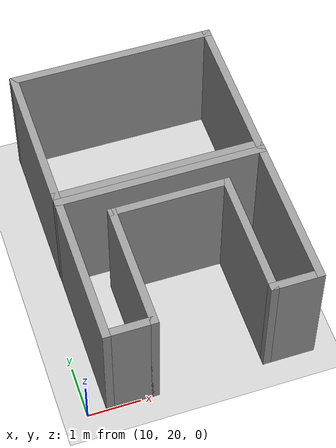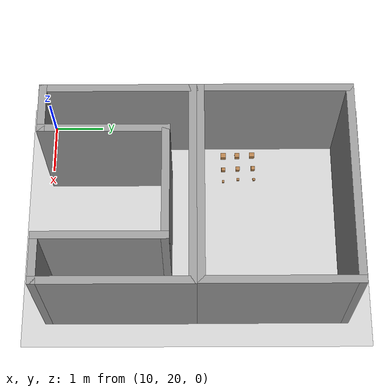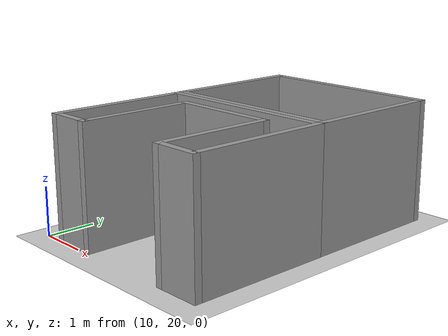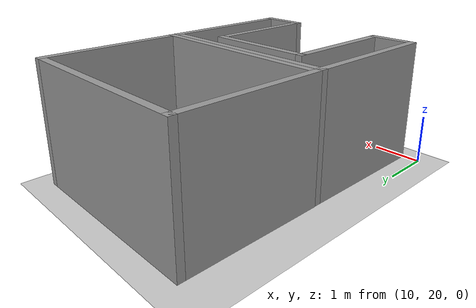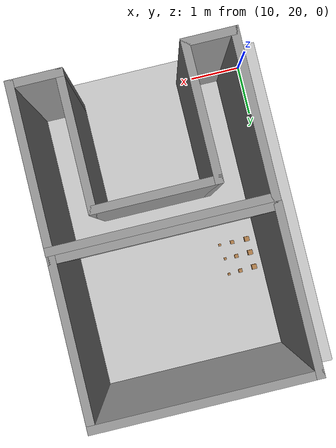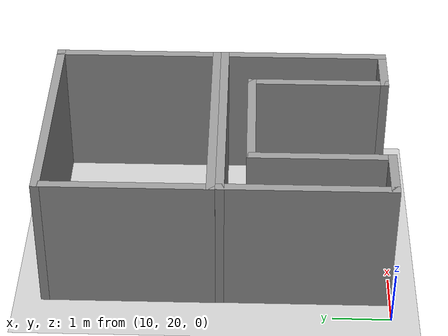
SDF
<sdf version="1.6">
 <world name="default">
  <model name="ground_plane">
   <static>1</static>
   <link name="link">
    <collision name="collision">
     <geometry><plane><normal>0 0 1</normal><size>105 105</size></plane></geometry>
     <surface>
      <contact><collide_bitmask>65535</collide_bitmask></contact>
      <friction><ode><mu>100</mu><mu2>50</mu2></ode></friction>
     </surface>
    </collision>
    <visual name="visual">
     <cast_shadows>0</cast_shadows>
     <geometry><plane><normal>0 0 1</normal><size>105 105</size></plane></geometry>
     <material>
      <script><uri>file://media/materials/scripts/gazebo.material</uri><name>Gazebo/Grey</name></script>
     </material>
    </visual>
   </link>
  </model>
  <model name="base3x4_30">
   <pose>12.3458 24.5057 0 0 -0 0</pose>
   <link name="Wall_18">
    <collision name="Wall_18_Collision">
     <geometry><box><size>3 0.15 2.5</size></box></geometry>
     <pose>0 0 1.25 0 -0 0</pose>
    </collision>
    <visual name="Wall_18_Visual">
     <pose>0 0 1.25 0 -0 0</pose>
     <geometry><box><size>3 0.15 2.5</size></box></geometry>
     <material>
      <script><uri>file://media/materials/scripts/gazebo.material</uri><name>Gazebo/Grey</name></script>
      <ambient>1 1 1 1</ambient>
     </material>
     <meta><layer>0</layer></meta>
    </visual>
    <pose>-1.925 -0 0 0 -0 -1.5708</pose>
   </link>
   <link name="Wall_19">
    <collision name="Wall_19_Collision">
     <geometry><box><size>4 0.15 2.5</size></box></geometry>
     <pose>0 0 1.25 0 -0 0</pose>
    </collision>
    <visual name="Wall_19_Visual">
     <pose>0 0 1.25 0 -0 0</pose>
     <geometry><box><size>4 0.15 2.5</size></box></geometry>
     <material>
      <script><uri>file://media/materials/scripts/gazebo.material</uri><name>Gazebo/Grey</name></script>
      <ambient>1 1 1 1</ambient>
     </material>
     <meta><layer>0</layer></meta>
    </visual>
    <pose>-0 -1.425 0 0 -0 0</pose>
   </link>
   <link name="Wall_20">
    <collision name="Wall_20_Collision">
     <geometry><box><size>3 0.15 2.5</size></box></geometry>
     <pose>0 0 1.25 0 -0 0</pose>
    </collision>
    <visual name="Wall_20_Visual">
     <pose>0 0 1.25 0 -0 0</pose>
     <geometry><box><size>3 0.15 2.5</size></box></geometry>
     <material>
      <script><uri>file://media/materials/scripts/gazebo.material</uri><name>Gazebo/Grey</name></script>
      <ambient>1 1 1 1</ambient>
     </material>
     <meta><layer>0</layer></meta>
    </visual>
    <pose>1.925 -0 0 0 -0 1.5708</pose>
   </link>
   <link name="Wall_21">
    <collision name="Wall_21_Collision">
     <geometry><box><size>4 0.15 2.5</size></box></geometry>
     <pose>0 0 1.25 0 -0 0</pose>
    </collision>
    <visual name="Wall_21_Visual">
     <pose>0 0 1.25 0 -0 0</pose>
     <geometry><box><size>4 0.15 2.5</size></box></geometry>
     <material>
      <script><uri>file://media/materials/scripts/gazebo.material</uri><name>Gazebo/Grey</name></script>
      <ambient>1 1 1 1</ambient>
     </material>
     <meta><layer>0</layer></meta>
    </visual>
    <pose>-0 1.425 0 0 -0 3.14159</pose>
   </link>
   <static>1</static>
  </model>
  <model name="wood_cube_10cm">
   <link name="link">
    <pose>0 0 0.05 0 -0 0</pose>
    <inertial>
     <mass>0.5167</mass>
     <inertia>
      <ixx>0.000861167</ixx>
      <ixy>0</ixy>
      <ixz>0</ixz>
      <iyy>0.000861167</iyy>
      <iyz>0</iyz>
      <izz>0.000861167</izz>
     </inertia>
    </inertial>
    <collision name="collision">
     <geometry><box><size>0.1 0.1 0.1</size></box></geometry>
     <surface>
      <contact>
       <poissons_ratio>0.347</poissons_ratio>
       <elastic_modulus>8.8e+09</elastic_modulus>
       <ode><kp>100000</kp><kd>100</kd><max_vel>100</max_vel><min_depth>0.001</min_depth></ode>
      </contact>
      <friction>
       <torsional>
        <coefficient>1</coefficient>
        <use_patch_radius>0</use_patch_radius>
        <surface_radius>0.01</surface_radius>
       </torsional>
      </friction>
     </surface>
    </collision>
    <visual name="visual">
     <geometry><box><size>0.1 0.1 0.1</size></box></geometry>
     <material>
      <script><uri>file://media/materials/scripts/gazebo.material</uri><name>Gazebo/Wood</name></script>
     </material>
    </visual>
   </link>
   <pose>10.6933 23.5723 -0.001013 0 -0 0</pose>
  </model>
  <model name="wood_cube_10cm_0">
   <link name="link">
    <pose>0 0 0.05 0 -0 0</pose>
    <inertial>
     <mass>0.5167</mass>
     <inertia>
      <ixx>0.000861167</ixx>
      <ixy>0</ixy>
      <ixz>0</ixz>
      <iyy>0.000861167</iyy>
      <iyz>0</iyz>
      <izz>0.000861167</izz>
     </inertia>
    </inertial>
    <collision name="collision">
     <geometry><box><size>0.1 0.1 0.1</size></box></geometry>
     <surface>
      <contact>
       <poissons_ratio>0.347</poissons_ratio>
       <elastic_modulus>8.8e+09</elastic_modulus>
       <ode><kp>100000</kp><kd>100</kd><max_vel>100</max_vel><min_depth>0.001</min_depth></ode>
      </contact>
      <friction>
       <torsional>
        <coefficient>1</coefficient>
        <use_patch_radius>0</use_patch_radius>
        <surface_radius>0.01</surface_radius>
       </torsional>
      </friction>
     </surface>
    </collision>
    <visual name="visual">
     <geometry><box><size>0.1 0.1 0.1</size></box></geometry>
     <material>
      <script><uri>file://media/materials/scripts/gazebo.material</uri><name>Gazebo/Wood</name></script>
     </material>
    </visual>
   </link>
   <pose>10.69 23.8636 -0.001013 0 -0 0</pose>
  </model>
  <model name="wood_cube_10cm_1">
   <link name="link">
    <pose>0 0 0.05 0 -0 0</pose>
    <inertial>
     <mass>0.5167</mass>
     <inertia>
      <ixx>0.000861167</ixx>
      <ixy>0</ixy>
      <ixz>0</ixz>
      <iyy>0.000861167</iyy>
      <iyz>0</iyz>
      <izz>0.000861167</izz>
     </inertia>
    </inertial>
    <collision name="collision">
     <geometry><box><size>0.1 0.1 0.1</size></box></geometry>
     <surface>
      <contact>
       <poissons_ratio>0.347</poissons_ratio>
       <elastic_modulus>8.8e+09</elastic_modulus>
       <ode><kp>100000</kp><kd>100</kd><max_vel>100</max_vel><min_depth>0.001</min_depth></ode>
      </contact>
      <friction>
       <torsional>
        <coefficient>1</coefficient>
        <use_patch_radius>0</use_patch_radius>
        <surface_radius>0.01</surface_radius>
       </torsional>
      </friction>
     </surface>
    </collision>
    <visual name="visual">
     <geometry><box><size>0.1 0.1 0.1</size></box></geometry>
     <material>
      <script><uri>file://media/materials/scripts/gazebo.material</uri><name>Gazebo/Wood</name></script>
     </material>
    </visual>
   </link>
   <pose>10.6798 24.1748 -0.001013 0 -0 0</pose>
  </model>
  <model name="wood_cube_7_5cm">
   <link name="link">
    <pose>0 0 0.0375 0 -0 0</pose>
    <inertial>
     <mass>0.2249</mass>
     <inertia>
      <ixx>0.000210844</ixx>
      <ixy>0</ixy>
      <ixz>0</ixz>
      <iyy>0.000210844</iyy>
      <iyz>0</iyz>
      <izz>0.000210844</izz>
     </inertia>
    </inertial>
    <collision name="collision">
     <geometry><box><size>0.075 0.075 0.075</size></box></geometry>
     <surface>
      <contact>
       <poissons_ratio>0.347</poissons_ratio>
       <elastic_modulus>8.8e+09</elastic_modulus>
       <ode><kp>100000</kp><kd>100</kd><max_vel>100</max_vel><min_depth>0.001</min_depth></ode>
      </contact>
      <friction>
       <torsional>
        <coefficient>1</coefficient>
        <use_patch_radius>0</use_patch_radius>
        <surface_radius>0.01</surface_radius>
       </torsional>
      </friction>
     </surface>
    </collision>
    <visual name="visual">
     <geometry><box><size>0.075 0.075 0.075</size></box></geometry>
     <material>
      <script><uri>file://media/materials/scripts/gazebo.material</uri><name>Gazebo/Wood</name></script>
     </material>
    </visual>
   </link>
   <pose>11.0047 23.569 -0.001006 0 -0 0</pose>
  </model>
  <model name="wood_cube_7_5cm_0">
   <link name="link">
    <pose>0 0 0.0375 0 -0 0</pose>
    <inertial>
     <mass>0.2249</mass>
     <inertia>
      <ixx>0.000210844</ixx>
      <ixy>0</ixy>
      <ixz>0</ixz>
      <iyy>0.000210844</iyy>
      <iyz>0</iyz>
      <izz>0.000210844</izz>
     </inertia>
    </inertial>
    <collision name="collision">
     <geometry><box><size>0.075 0.075 0.075</size></box></geometry>
     <surface>
      <contact>
       <poissons_ratio>0.347</poissons_ratio>
       <elastic_modulus>8.8e+09</elastic_modulus>
       <ode><kp>100000</kp><kd>100</kd><max_vel>100</max_vel><min_depth>0.001</min_depth></ode>
      </contact>
      <friction>
       <torsional>
        <coefficient>1</coefficient>
        <use_patch_radius>0</use_patch_radius>
        <surface_radius>0.01</surface_radius>
       </torsional>
      </friction>
     </surface>
    </collision>
    <visual name="visual">
     <geometry><box><size>0.075 0.075 0.075</size></box></geometry>
     <material>
      <script><uri>file://media/materials/scripts/gazebo.material</uri><name>Gazebo/Wood</name></script>
     </material>
    </visual>
   </link>
   <pose>10.9881 23.8737 -0.001006 0 -0 0</pose>
  </model>
  <model name="wood_cube_7_5cm_1">
   <link name="link">
    <pose>0 0 0.0375 0 -0 0</pose>
    <inertial>
     <mass>0.2249</mass>
     <inertia>
      <ixx>0.000210844</ixx>
      <ixy>0</ixy>
      <ixz>0</ixz>
      <iyy>0.000210844</iyy>
      <iyz>0</iyz>
      <izz>0.000210844</izz>
     </inertia>
    </inertial>
    <collision name="collision">
     <geometry><box><size>0.075 0.075 0.075</size></box></geometry>
     <surface>
      <contact>
       <poissons_ratio>0.347</poissons_ratio>
       <elastic_modulus>8.8e+09</elastic_modulus>
       <ode><kp>100000</kp><kd>100</kd><max_vel>100</max_vel><min_depth>0.001</min_depth></ode>
      </contact>
      <friction>
       <torsional>
        <coefficient>1</coefficient>
        <use_patch_radius>0</use_patch_radius>
        <surface_radius>0.01</surface_radius>
       </torsional>
      </friction>
     </surface>
    </collision>
    <visual name="visual">
     <geometry><box><size>0.075 0.075 0.075</size></box></geometry>
     <material>
      <script><uri>file://media/materials/scripts/gazebo.material</uri><name>Gazebo/Wood</name></script>
     </material>
    </visual>
   </link>
   <pose>10.9777 24.1915 -0.001006 0 -0 0</pose>
  </model>
  <model name="wood_cube_5cm">
   <link name="link">
    <pose>0 0 0.025 0 -0 0</pose>
    <inertial>
     <mass>0.0565</mass>
     <inertia>
      <ixx>2.35417e-05</ixx>
      <ixy>0</ixy>
      <ixz>0</ixz>
      <iyy>2.35417e-05</iyy>
      <iyz>0</iyz>
      <izz>2.35417e-05</izz>
     </inertia>
    </inertial>
    <collision name="collision">
     <geometry><box><size>0.05 0.05 0.05</size></box></geometry>
     <surface>
      <contact>
       <poissons_ratio>0.347</poissons_ratio>
       <elastic_modulus>8.8e+09</elastic_modulus>
       <ode><kp>100000</kp><kd>1</kd><max_vel>1</max_vel><min_depth>0.001</min_depth></ode>
      </contact>
      <friction>
       <torsional>
        <coefficient>1</coefficient>
        <use_patch_radius>0</use_patch_radius>
        <surface_radius>0.05</surface_radius>
       </torsional>
      </friction>
     </surface>
    </collision>
    <visual name="visual">
     <geometry><box><size>0.05 0.05 0.05</size></box></geometry>
     <material>
      <script><uri>file://media/materials/scripts/gazebo.material</uri><name>Gazebo/Wood</name></script>
     </material>
    </visual>
   </link>
   <pose>11.2698 23.5655 -0.001001 0 -0 0</pose>
  </model>
  <model name="wood_cube_5cm_0">
   <link name="link">
    <pose>0 0 0.025 0 -0 0</pose>
    <inertial>
     <mass>0.0565</mass>
     <inertia>
      <ixx>2.35417e-05</ixx>
      <ixy>0</ixy>
      <ixz>0</ixz>
      <iyy>2.35417e-05</iyy>
      <iyz>0</iyz>
      <izz>2.35417e-05</izz>
     </inertia>
    </inertial>
    <collision name="collision">
     <geometry><box><size>0.05 0.05 0.05</size></box></geometry>
     <surface>
      <contact>
       <poissons_ratio>0.347</poissons_ratio>
       <elastic_modulus>8.8e+09</elastic_modulus>
       <ode><kp>100000</kp><kd>1</kd><max_vel>1</max_vel><min_depth>0.001</min_depth></ode>
      </contact>
      <friction>
       <torsional>
        <coefficient>1</coefficient>
        <use_patch_radius>0</use_patch_radius>
        <surface_radius>0.05</surface_radius>
       </torsional>
      </friction>
     </surface>
    </collision>
    <visual name="visual">
     <geometry><box><size>0.05 0.05 0.05</size></box></geometry>
     <material>
      <script><uri>file://media/materials/scripts/gazebo.material</uri><name>Gazebo/Wood</name></script>
     </material>
    </visual>
   </link>
   <pose>11.2265 23.8764 -0.001001 0 -0 0</pose>
  </model>
  <model name="wood_cube_5cm_1">
   <link name="link">
    <pose>0 0 0.025 0 -0 0</pose>
    <inertial>
     <mass>0.0565</mass>
     <inertia>
      <ixx>2.35417e-05</ixx>
      <ixy>0</ixy>
      <ixz>0</ixz>
      <iyy>2.35417e-05</iyy>
      <iyz>0</iyz>
      <izz>2.35417e-05</izz>
     </inertia>
    </inertial>
    <collision name="collision">
     <geometry><box><size>0.05 0.05 0.05</size></box></geometry>
     <surface>
      <contact>
       <poissons_ratio>0.347</poissons_ratio>
       <elastic_modulus>8.8e+09</elastic_modulus>
       <ode><kp>100000</kp><kd>1</kd><max_vel>1</max_vel><min_depth>0.001</min_depth></ode>
      </contact>
      <friction>
       <torsional>
        <coefficient>1</coefficient>
        <use_patch_radius>0</use_patch_radius>
        <surface_radius>0.05</surface_radius>
       </torsional>
      </friction>
     </surface>
    </collision>
    <visual name="visual">
     <geometry><box><size>0.05 0.05 0.05</size></box></geometry>
     <material>
      <script><uri>file://media/materials/scripts/gazebo.material</uri><name>Gazebo/Wood</name></script>
     </material>
    </visual>
   </link>
   <pose>11.2228 24.2076 -0.001001 0 -0 0</pose>
  </model>
  <model name="box_u_v4X3X2.5_7">
   <pose>12.352 21.5082 0 0 -0 0</pose>
   <link name="Wall_30">
    <collision name="Wall_30_Collision">
     <geometry><box><size>3 0.15 2.5</size></box></geometry>
     <pose>0 0 1.25 0 -0 0</pose>
    </collision>
    <visual name="Wall_30_Visual">
     <pose>0 0 1.25 0 -0 0</pose>
     <geometry><box><size>3 0.15 2.5</size></box></geometry>
     <material>
      <script><uri>file://media/materials/scripts/gazebo.material</uri><name>Gazebo/Grey</name></script>
      <ambient>1 1 1 1</ambient>
     </material>
     <meta><layer>0</layer></meta>
    </visual>
    <pose>-1.925 0 0 0 -0 -1.5708</pose>
   </link>
   <link name="Wall_32">
    <collision name="Wall_32_Collision">
     <geometry><box><size>4 0.15 2.5</size></box></geometry>
     <pose>0 0 1.25 0 -0 0</pose>
    </collision>
    <visual name="Wall_32_Visual">
     <pose>0 0 1.25 0 -0 0</pose>
     <geometry><box><size>4 0.15 2.5</size></box></geometry>
     <material>
      <script><uri>file://media/materials/scripts/gazebo.material</uri><name>Gazebo/Grey</name></script>
      <ambient>1 1 1 1</ambient>
     </material>
     <meta><layer>0</layer></meta>
    </visual>
    <pose>0 1.425 0 0 -0 0</pose>
   </link>
   <link name="Wall_33">
    <collision name="Wall_33_Collision">
     <geometry><box><size>3 0.15 2.5</size></box></geometry>
     <pose>0 0 1.25 0 -0 0</pose>
    </collision>
    <visual name="Wall_33_Visual">
     <pose>0 0 1.25 0 -0 0</pose>
     <geometry><box><size>3 0.15 2.5</size></box></geometry>
     <material>
      <script><uri>file://media/materials/scripts/gazebo.material</uri><name>Gazebo/Grey</name></script>
      <ambient>1 1 1 1</ambient>
     </material>
     <meta><layer>0</layer></meta>
    </visual>
    <pose>1.925 0 0 0 -0 -1.5708</pose>
   </link>
   <link name="Wall_34">
    <collision name="Wall_34_Collision">
     <geometry><box><size>1 0.15 2.5</size></box></geometry>
     <pose>0 0 1.25 0 -0 0</pose>
    </collision>
    <visual name="Wall_34_Visual">
     <pose>0 0 1.25 0 -0 0</pose>
     <geometry><box><size>1 0.15 2.5</size></box></geometry>
     <material>
      <script><uri>file://media/materials/scripts/gazebo.material</uri><name>Gazebo/Grey</name></script>
      <ambient>1 1 1 1</ambient>
     </material>
     <meta><layer>0</layer></meta>
    </visual>
    <pose>1.5 -1.425 0 0 -0 3.14159</pose>
   </link>
   <link name="Wall_35">
    <collision name="Wall_35_Collision">
     <geometry><box><size>2.5 0.15 2.5</size></box></geometry>
     <pose>0 0 1.25 0 -0 0</pose>
    </collision>
    <visual name="Wall_35_Visual">
     <pose>0 0 1.25 0 -0 0</pose>
     <geometry><box><size>2.5 0.15 2.5</size></box></geometry>
     <material>
      <script><uri>file://media/materials/scripts/gazebo.material</uri><name>Gazebo/Grey</name></script>
      <ambient>1 1 1 1</ambient>
     </material>
     <meta><layer>0</layer></meta>
    </visual>
    <pose>1.075 -0.25 0 0 -0 1.5708</pose>
   </link>
   <link name="Wall_37">
    <collision name="Wall_37_Collision">
     <geometry><box><size>1 0.15 2.5</size></box></geometry>
     <pose>0 0 1.25 0 -0 0</pose>
    </collision>
    <visual name="Wall_37_Visual">
     <pose>0 0 1.25 0 -0 0</pose>
     <geometry><box><size>1 0.15 2.5</size></box></geometry>
     <material>
      <script><uri>file://media/materials/scripts/gazebo.material</uri><name>Gazebo/Grey</name></script>
      <ambient>1 1 1 1</ambient>
     </material>
     <meta><layer>0</layer></meta>
    </visual>
    <pose>-1.5 -1.425 0 0 -0 0</pose>
   </link>
   <link name="Wall_38">
    <collision name="Wall_38_Collision">
     <geometry><box><size>2.5 0.15 2.5</size></box></geometry>
     <pose>0 0 1.25 0 -0 0</pose>
    </collision>
    <visual name="Wall_38_Visual">
     <pose>0 0 1.25 0 -0 0</pose>
     <geometry><box><size>2.5 0.15 2.5</size></box></geometry>
     <material>
      <script><uri>file://media/materials/scripts/gazebo.material</uri><name>Gazebo/Grey</name></script>
      <ambient>1 1 1 1</ambient>
     </material>
     <meta><layer>0</layer></meta>
    </visual>
    <pose>-1.075 -0.25 0 0 -0 1.5708</pose>
   </link>
   <link name="Wall_39">
    <collision name="Wall_39_Collision">
     <geometry><box><size>2.3 0.15 2.5</size></box></geometry>
     <pose>0 0 1.25 0 -0 0</pose>
    </collision>
    <visual name="Wall_39_Visual">
     <pose>0 0 1.25 0 -0 0</pose>
     <geometry><box><size>2.3 0.15 2.5</size></box></geometry>
     <material>
      <script><uri>file://media/materials/scripts/gazebo.material</uri><name>Gazebo/Grey</name></script>
      <ambient>1 1 1 1</ambient>
     </material>
     <meta><layer>0</layer></meta>
    </visual>
    <pose>0 0.925 0 0 -0 0</pose>
   </link>
   <static>1</static>
  </model>
 </world>
</sdf>
